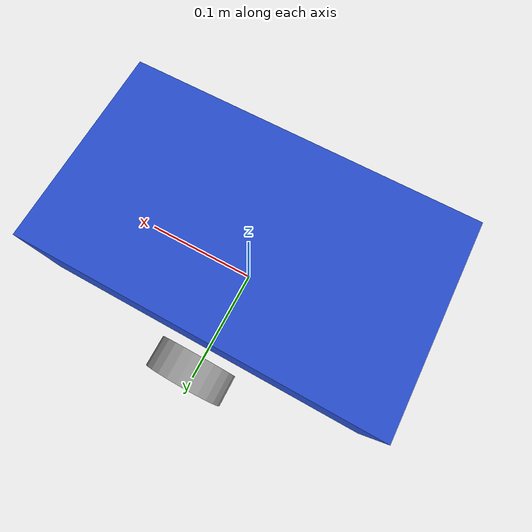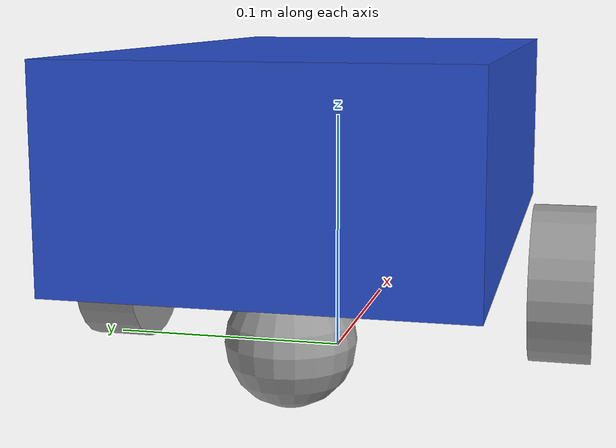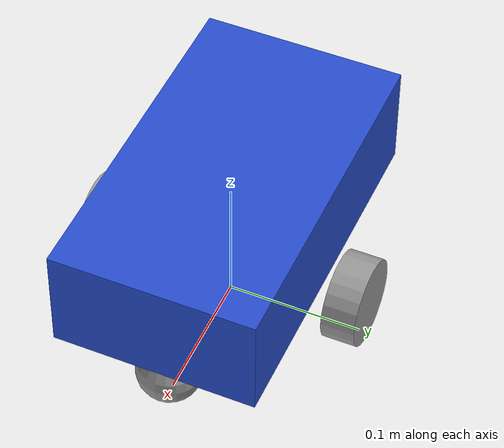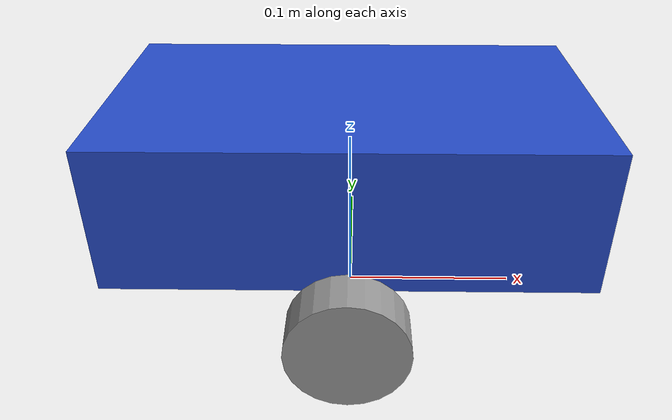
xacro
<?xml version="1.0"?>
<robot xmlns:xacro="http://ros.org/wiki/xacro">

    <xacro:property name="base_length" value="0.26" />
    <xacro:property name="base_width" value="0.15" />
    <xacro:property name="base_height" value="0.08" />

    <xacro:property name="wheel_length" value="0.025" />
    <xacro:property name="wheel_radius" value="0.0325" />

    <xacro:property name="caster_wheel_radius" value="${(wheel_radius * 1.5) / 2}" />

    <link name="base_footprint" />

    <link name="base_link">
        <visual>
            <geometry>
                <box size="${base_length} ${base_width} ${base_height}" />
            </geometry>
            <origin xyz="0 0 ${base_height / 2.0}" rpy="0 0 0" />
            <material name="blue" />
        </visual>
        <collision>
            <geometry>
                <box size="${base_length} ${base_width} ${base_height}" />
            </geometry>
            <origin xyz="0 0 ${base_height / 2.0}" rpy="0 0 0" />
        </collision>
        <xacro:box_inertia m="0.4" x="${base_length}" y="${base_width}" z="${base_height}"
                            o_xyz="0 0 ${base_height / 2.0}" o_rpy="0 0 0" />
    </link>

    <xacro:macro name="wheel_link" params="prefix">
        <link name="${prefix}_wheel_link">
            <visual>
                <geometry>
                    <cylinder radius="${wheel_radius}" length="${wheel_length}" />
                </geometry>
                <origin xyz="0 0 0" rpy="${pi / 2.0} 0 0" />
                <material name="grey" />
            </visual>
            <collision>
                <geometry>
                    <sphere radius="${wheel_radius}"/>
                </geometry>
                <origin xyz="0 0 0" rpy="0 0 0" />
            </collision>
            <xacro:cylinder_inertia m="0.055" r="${wheel_radius}" l="${wheel_length}" o_xyz="0 0 0" o_rpy="${pi / 2.0} 0 0" />
        </link>
    </xacro:macro>

    <xacro:wheel_link prefix="left" />
    <xacro:wheel_link prefix="right" />

    <xacro:macro name="caster_wheel_link" params="prefix">
        <link name="${prefix}_caster_wheel_link">
            <visual>
                <geometry>
                    <sphere radius="${caster_wheel_radius}"/>
                </geometry>
                <origin xyz="0 0 ${-caster_wheel_radius}" rpy="0 0 0"/>
                <material name="grey" />
            </visual>
            <collision>
                <geometry>
                    <sphere radius="${caster_wheel_radius}"/>
                </geometry>
                <origin xyz="0 0 ${-caster_wheel_radius}" rpy="0 0 0"/>
            </collision>
            <xacro:sphere_inertia m="0.037" r="${caster_wheel_radius}" o_xyz="0 0 ${-caster_wheel_radius}" o_rpy="0 0 0" />
        </link>
    </xacro:macro>

    <xacro:caster_wheel_link prefix="front" />
    <xacro:caster_wheel_link prefix="back" />

    <joint name="base_joint" type="fixed">
        <parent link="base_footprint"/>
        <child link="base_link"/>
        <origin xyz="0 0 ${wheel_radius * 1.5}" rpy="0 0 0"/>
    </joint>

    <joint name="base_left_wheel_joint" type="continuous">
        <parent link="base_link" />
        <child link="left_wheel_link" />
        <origin xyz="0 ${((base_width + wheel_length) / 2.0 ) + 0.0075 } ${-(wheel_radius / 2)}" rpy="0 0 0" />
        <axis xyz="0 1 0" />
        <limit effort="100" velocity="100" />
    </joint>

    <joint name="base_right_wheel_joint" type="continuous">
        <parent link="base_link" />
        <child link="right_wheel_link" />
        <origin xyz="0 ${-(((base_width + wheel_length) / 2.0 ) + 0.0075 )} ${-(wheel_radius / 2)}" rpy="0 0 0" />
        <axis xyz="0 1 0" />
        <limit effort="100" velocity="100" />
    </joint>

    <joint name="base_front_caster_wheel_joint" type="fixed">
        <parent link="base_link"/>
        <child link="front_caster_wheel_link"/>
        <origin xyz="${(base_length / 2.0) * 0.8} 0 0" rpy="0 0 0"/>
    </joint>

    <joint name="base_back_caster_wheel_joint" type="fixed">
        <parent link="base_link"/>
        <child link="back_caster_wheel_link"/>
        <origin xyz="${-(base_length / 2.0) * 0.6} 0 0" rpy="0 0 0"/>
    </joint>

</robot>
